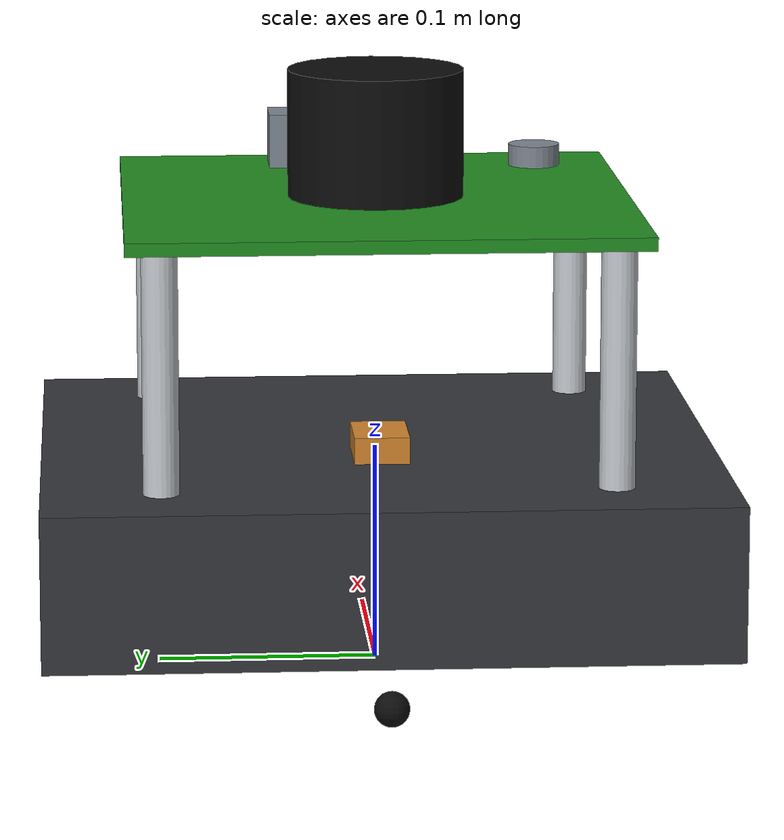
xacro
<?xml version="1.0"?>
<robot name="autonav_bot" xmlns:xacro="http://www.ros.org/wiki/xacro" xmlns:gz="http://gazebosim.org/schema">

  <xacro:arg name="lidar_mode" default="2d" />

  <!-- Include semua komponen -->
  <xacro:include filename="robot_core.xacro" />
  <xacro:include filename="lidar.xacro" />
  <xacro:include filename="lidar_3d.xacro" />
  <xacro:include filename="imu.xacro" />
  <xacro:include filename="depth_camera.xacro" />

  <!-- Bodi utama robot -->
  <xacro:turtlebot_core />

  <!-- Pilih mode LiDAR berdasarkan argumen -->
  <xacro:if value="${'$(arg lidar_mode)' == '2d'}">
    <xacro:turtlebot_lidar />
  </xacro:if>
  <xacro:if value="${'$(arg lidar_mode)' == '3d'}">
    <xacro:turtlebot_lidar_3d />
  </xacro:if>

  <!-- Sensor lainnya -->
  <xacro:turtlebot_imu />
  <xacro:turtlebot_depth_camera />

</robot>

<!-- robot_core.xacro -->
<robot xmlns:xacro="http://www.ros.org/wiki/xacro">

    <material name="dark_grey"><color rgba="0.20 0.21 0.23 1.0"/></material>
    <material name="mid_grey"><color rgba="0.50 0.53 0.57 1.0"/></material>
    <material name="light_grey"><color rgba="0.78 0.80 0.82 1.0"/></material>
    <material name="black"><color rgba="0.05 0.05 0.05 1.0"/></material>
    <material name="accent_orange"><color rgba="0.82 0.52 0.18 1.0"/></material>
    <material name="green_pcb"><color rgba="0.13 0.55 0.13 1.0"/></material>

    <xacro:macro name="turtlebot_core">
        <xacro:property name="PI" value="3.1415926535897931" />

        <xacro:property name="base_x" value="0.281" />
        <xacro:property name="base_y" value="0.306" />
        <xacro:property name="base_z" value="0.070" />
        <xacro:property name="base_mass" value="1.80" />

        <xacro:property name="wheel_radius" value="0.033" />
        <xacro:property name="wheel_width" value="0.018" />
        <xacro:property name="wheel_mass" value="0.05" />
        <xacro:property name="wheel_separation" value="0.287" />
        <xacro:property name="wheel_x_offset" value="0.0" />

        <xacro:property name="caster_radius" value="0.008" />
        <xacro:property name="caster_mass" value="0.01" />

        <xacro:property name="standoff_radius" value="0.008" />
        <xacro:property name="standoff_height" value="0.108" />

        <xacro:property name="plate_x" value="0.230" />
        <xacro:property name="plate_y" value="0.230" />
        <xacro:property name="plate_z" value="0.006" />
        <xacro:property name="plate_mass" value="0.15" />

        <link name="base_footprint" />

        <joint name="base_footprint_joint" type="fixed">
            <parent link="base_footprint" />
            <child link="base_link" />
            <origin xyz="0.0 0.0 ${wheel_radius}" rpy="0 0 0" />
        </joint>

        <link name="base_link">
            <visual>
                <origin xyz="0.0 0.0 ${base_z/2}" rpy="0 0 0" />
                <geometry>
                    <box size="${base_x} ${base_y} ${base_z}" />
                </geometry>
                <material name="dark_grey" />
            </visual>
            <collision>
                <origin xyz="0.0 0.0 ${base_z/2}" rpy="0 0 0" />
                <geometry>
                    <box size="${base_x} ${base_y} ${base_z}" />
                </geometry>
            </collision>
            <inertial>
                <origin xyz="0.0 0.0 ${base_z/2}" rpy="0 0 0" />
                <mass value="${base_mass}" />
                <inertia ixx="${(1.0/12.0)*base_mass*(base_y*base_y + base_z*base_z)}"
                                 ixy="0.0" ixz="0.0"
                                 iyy="${(1.0/12.0)*base_mass*(base_x*base_x + base_z*base_z)}"
                                 iyz="0.0"
                                 izz="${(1.0/12.0)*base_mass*(base_x*base_x + base_y*base_y)}" />
            </inertial>
        </link>

        <xacro:macro name="wheel" params="prefix y_reflect">
            <link name="wheel_${prefix}_link">
                <visual>
                    <origin xyz="0 0 0" rpy="${PI/2} 0 0" />
                    <geometry>
                        <cylinder radius="${wheel_radius}" length="${wheel_width}" />
                    </geometry>
                    <material name="black" />
                </visual>
                <collision>
                    <origin xyz="0 0 0" rpy="${PI/2} 0 0" />
                    <geometry>
                        <cylinder radius="${wheel_radius}" length="${wheel_width}" />
                    </geometry>
                </collision>
                <inertial>
                    <origin xyz="0 0 0" />
                    <mass value="${wheel_mass}" />
                    <inertia ixx="${(1.0/12.0)*wheel_mass*(3*wheel_radius*wheel_radius + wheel_width*wheel_width)}"
                                     ixy="0" ixz="0"
                                     iyy="${(1.0/12.0)*wheel_mass*(3*wheel_radius*wheel_radius + wheel_width*wheel_width)}"
                                     iyz="0"
                                     izz="${(1.0/2.0)*wheel_mass*wheel_radius*wheel_radius}" />
                </inertial>
            </link>

            <joint name="wheel_${prefix}_joint" type="continuous">
                <parent link="base_link" />
                <child link="wheel_${prefix}_link" />
                <origin xyz="${wheel_x_offset} ${y_reflect * wheel_separation/2} 0.0" rpy="0 0 0" />
                <axis xyz="0 1 0" />
                <dynamics damping="0.01" friction="0.1" />
            </joint>
        </xacro:macro>

        <xacro:wheel prefix="left" y_reflect="1" />
        <xacro:wheel prefix="right" y_reflect="-1" />

        <xacro:macro name="caster" params="prefix x_offset">
            <link name="caster_${prefix}_link">
                <visual>
                    <origin xyz="0 0 0" rpy="0 0 0" />
                    <geometry>
                        <sphere radius="${caster_radius}" />
                    </geometry>
                    <material name="black" />
                </visual>
                <collision>
                    <origin xyz="0 0 0" rpy="0 0 0" />
                    <geometry>
                        <sphere radius="${caster_radius}" />
                    </geometry>
                    <surface>
                        <friction>
                            <ode>
                                <mu>0.0</mu>
                                <mu2>0.0</mu2>
                            </ode>
                        </friction>
                    </surface>
                </collision>
                <inertial>
                    <origin xyz="0 0 0" />
                    <mass value="${caster_mass}" />
                    <inertia ixx="${(2.0/5.0)*caster_mass*caster_radius*caster_radius}"
                                     ixy="0" ixz="0"
                                     iyy="${(2.0/5.0)*caster_mass*caster_radius*caster_radius}"
                                     iyz="0"
                                     izz="${(2.0/5.0)*caster_mass*caster_radius*caster_radius}" />
                </inertial>
            </link>

            <joint name="caster_${prefix}_joint" type="fixed">
                <parent link="base_link" />
                <child link="caster_${prefix}_link" />
                <origin xyz="${x_offset} 0.0 ${-(wheel_radius - caster_radius)}" rpy="0 0 0" />
            </joint>
        </xacro:macro>

        <xacro:caster prefix="front" x_offset="${base_x/2 - 0.025}" />
        <xacro:caster prefix="back" x_offset="${-(base_x/2 - 0.025)}" />

        <xacro:macro name="standoff" params="prefix x_pos y_pos">
            <link name="standoff_${prefix}_link">
                <visual>
                    <origin xyz="0 0 ${standoff_height/2}" rpy="0 0 0" />
                    <geometry>
                        <cylinder radius="${standoff_radius}" length="${standoff_height}" />
                    </geometry>
                    <material name="light_grey" />
                </visual>
                <collision>
                    <origin xyz="0 0 ${standoff_height/2}" rpy="0 0 0" />
                    <geometry>
                        <cylinder radius="${standoff_radius}" length="${standoff_height}" />
                    </geometry>
                </collision>
                <inertial>
                    <origin xyz="0 0 ${standoff_height/2}" />
                    <mass value="0.02" />
                    <inertia ixx="0.00001" ixy="0" ixz="0" iyy="0.00001" iyz="0" izz="0.000001" />
                </inertial>
            </link>

            <joint name="standoff_${prefix}_joint" type="fixed">
                <parent link="base_link" />
                <child link="standoff_${prefix}_link" />
                <origin xyz="${x_pos} ${y_pos} ${base_z}" rpy="0 0 0" />
            </joint>
        </xacro:macro>

        <xacro:standoff prefix="front_left" x_pos="${plate_x/2 - 0.015}" y_pos="${plate_y/2 - 0.015}" />
        <xacro:standoff prefix="front_right" x_pos="${plate_x/2 - 0.015}" y_pos="${-(plate_y/2 - 0.015)}" />
        <xacro:standoff prefix="back_left" x_pos="${-(plate_x/2 - 0.015)}" y_pos="${plate_y/2 - 0.015}" />
        <xacro:standoff prefix="back_right" x_pos="${-(plate_x/2 - 0.015)}" y_pos="${-(plate_y/2 - 0.015)}" />

        <link name="top_plate_link">
            <visual>
                <origin xyz="0.0 0.0 0.0" rpy="0 0 0" />
                <geometry>
                    <box size="${plate_x} ${plate_y} ${plate_z}" />
                </geometry>
                <material name="green_pcb" />
            </visual>
            <collision>
                <origin xyz="0.0 0.0 0.0" rpy="0 0 0" />
                <geometry>
                    <box size="${plate_x} ${plate_y} ${plate_z}" />
                </geometry>
            </collision>
            <inertial>
                <origin xyz="0.0 0.0 0.0" rpy="0 0 0" />
                <mass value="${plate_mass}" />
                <inertia ixx="${(1.0/12.0)*plate_mass*(plate_y*plate_y + plate_z*plate_z)}"
                                 ixy="0.0" ixz="0.0"
                                 iyy="${(1.0/12.0)*plate_mass*(plate_x*plate_x + plate_z*plate_z)}"
                                 iyz="0.0"
                                 izz="${(1.0/12.0)*plate_mass*(plate_x*plate_x + plate_y*plate_y)}" />
            </inertial>
        </link>

        <joint name="top_plate_joint" type="fixed">
            <parent link="base_link" />
            <child link="top_plate_link" />
            <origin xyz="0.0 0.0 ${base_z + standoff_height + plate_z/2}" rpy="0 0 0" />
        </joint>

        <link name="gps_link">
            <visual>
                <origin xyz="0 0 0" rpy="0 0 0" />
                <geometry>
                    <cylinder radius="0.012" length="0.010" />
                </geometry>
                <material name="mid_grey" />
            </visual>
            <inertial>
                <origin xyz="0 0 0" />
                <mass value="0.005" />
                <inertia ixx="0.000001" ixy="0" ixz="0" iyy="0.000001" iyz="0" izz="0.000001" />
            </inertial>
        </link>

        <joint name="gps_joint" type="fixed">
            <parent link="top_plate_link" />
            <child link="gps_link" />
            <origin xyz="${plate_x/2 - 0.035} ${-(plate_y/2 - 0.035)} ${plate_z/2 + 0.005}" rpy="0 0 0" />
        </joint>

        <gazebo reference="base_link"><material>Gazebo/DarkGrey</material></gazebo>
        <gazebo reference="top_plate_link"><material>Gazebo/Green</material></gazebo>
        <gazebo reference="wheel_left_link"><material>Gazebo/FlatBlack</material></gazebo>
        <gazebo reference="wheel_right_link"><material>Gazebo/FlatBlack</material></gazebo>
        <gazebo reference="caster_front_link"><material>Gazebo/FlatBlack</material><mu1>0.0</mu1><mu2>0.0</mu2></gazebo>
        <gazebo reference="caster_back_link"><material>Gazebo/FlatBlack</material><mu1>0.0</mu1><mu2>0.0</mu2></gazebo>

        <gazebo>
            <plugin
                filename="gz-sim-diff-drive-system"
                name="gz::sim::systems::DiffDrive">
                <left_joint>wheel_left_joint</left_joint>
                <right_joint>wheel_right_joint</right_joint>
                <wheel_separation>${wheel_separation}</wheel_separation>
                <wheel_radius>${wheel_radius}</wheel_radius>
                <max_linear_acceleration>2.0</max_linear_acceleration>
                <min_linear_acceleration>-2.0</min_linear_acceleration>
                <max_angular_acceleration>4.0</max_angular_acceleration>
                <min_angular_acceleration>-4.0</min_angular_acceleration>
                <max_linear_velocity>1.0</max_linear_velocity>
                <min_linear_velocity>-1.0</min_linear_velocity>
                <max_angular_velocity>2.0</max_angular_velocity>
                <min_angular_velocity>-2.0</min_angular_velocity>
                <topic>/cmd_vel</topic>
                <odom_topic>/odom</odom_topic>
                <tf_topic>/tf</tf_topic>
                <frame_id>odom</frame_id>
                <child_frame_id>base_footprint</child_frame_id>
                <odom_publish_frequency>50</odom_publish_frequency>
            </plugin>
        </gazebo>

        <gazebo>
            <plugin
                filename="gz-sim-joint-state-publisher-system"
                name="gz::sim::systems::JointStatePublisher">
                <topic>/joint_states</topic>
                <joint_name>wheel_left_joint</joint_name>
                <joint_name>wheel_right_joint</joint_name>
                <update_rate>30</update_rate>
            </plugin>
        </gazebo>
    </xacro:macro>

</robot>

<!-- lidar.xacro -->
<robot xmlns:xacro="http://www.ros.org/wiki/xacro" xmlns:gz="http://gazebosim.org/schema">

    <xacro:macro name="turtlebot_lidar" params="parent_link:=base_link">
        <xacro:property name="PI" value="3.1415926535897931" />
        <xacro:property name="lidar_radius" value="0.040" />
        <xacro:property name="lidar_height" value="0.058" />
        <xacro:property name="lidar_mass" value="0.12" />

        <!-- Physical link silinder LiDAR -->
        <link name="lidar_link">
            <visual>
                <origin xyz="0 0 ${lidar_height/2}" rpy="0 0 0" />
                <geometry>
                    <cylinder radius="${lidar_radius}" length="${lidar_height}" />
                </geometry>
                <material name="black" />
            </visual>
            <collision>
                <origin xyz="0 0 ${lidar_height/2}" rpy="0 0 0" />
                <geometry>
                    <cylinder radius="${lidar_radius}" length="${lidar_height}" />
                </geometry>
            </collision>
            <inertial>
                <origin xyz="0 0 ${lidar_height/2}" />
                <mass value="${lidar_mass}" />
                <inertia ixx="${(1.0/12.0)*lidar_mass*(3*lidar_radius*lidar_radius + lidar_height*lidar_height)}"
                                 ixy="0" ixz="0"
                                 iyy="${(1.0/12.0)*lidar_mass*(3*lidar_radius*lidar_radius + lidar_height*lidar_height)}"
                                 iyz="0"
                                 izz="${(1.0/2.0)*lidar_mass*lidar_radius*lidar_radius}" />
            </inertial>
        </link>

        <!-- Joint menghubungkan lidar ke bodi robot -->
        <joint name="lidar_joint" type="fixed">
            <parent link="${parent_link}" />
            <child link="lidar_link" />
            <!-- z = tinggi chassis (0.070) + wheel_radius (0.033) + sedikit offset = ~0.184 -->
            <origin xyz="0.0 0.0 0.184" rpy="0 0 0" />
        </joint>

        <!-- Frame aliases agar RViz2 TF tree mengenali semua kemungkinan frame Gazebo -->
        <link name="autonav_bot/lidar_link/lidar" />
        <joint name="lidar_gz_frame_joint" type="fixed">
            <parent link="lidar_link" />
            <child link="autonav_bot/lidar_link/lidar" />
            <origin xyz="0 0 ${lidar_height/2}" rpy="0 0 0" />
        </joint>

        <link name="base_scan" />
        <joint name="scan_joint" type="fixed">
            <parent link="lidar_link" />
            <child link="base_scan" />
            <origin xyz="0 0 ${lidar_height/2}" rpy="0 0 0" />
        </joint>

        <!-- Instruksikan Gazebo Harmonic untuk TIDAK menggabungkan joint ini -->
        <gazebo reference="lidar_joint">
            <preserveFixedJoint>true</preserveFixedJoint>
        </gazebo>

        <!-- Warna link LiDAR di Gazebo -->
        <gazebo reference="lidar_link">
            <material>Gazebo/FlatBlack</material>
        </gazebo>

        <!-- Sensor gpu_lidar -->
        <gazebo reference="lidar_link">
            <sensor name="lidar" type="gpu_lidar">
                <pose>0 0 ${lidar_height/2} 0 0 0</pose>
                <always_on>true</always_on>
                <visualize>true</visualize>
                <update_rate>10</update_rate>
                <topic>/scan</topic>
                <gz:frame_id>lidar_link</gz:frame_id>
                <frame_id>lidar_link</frame_id>
                <lidar>
                    <scan>
                        <horizontal>
                            <samples>360</samples>
                            <resolution>1</resolution>
                            <min_angle>${-PI}</min_angle>
                            <max_angle>${PI}</max_angle>
                        </horizontal>
                    </scan>
                    <range>
                        <min>0.120</min>
                        <max>12.0</max>
                        <resolution>0.015</resolution>
                    </range>
                    <noise>
                        <type>gaussian</type>
                        <mean>0.0</mean>
                        <stddev>0.01</stddev>
                    </noise>
                </lidar>
            </sensor>
        </gazebo>
    </xacro:macro>

</robot>

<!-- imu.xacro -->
<robot xmlns:xacro="http://www.ros.org/wiki/xacro" xmlns:gz="http://gazebosim.org/schema">

    <xacro:macro name="turtlebot_imu" params="parent_link:=base_link">
        <link name="imu_link">
            <visual>
                <origin xyz="0 0 0" rpy="0 0 0" />
                <geometry>
                    <box size="0.035 0.025 0.012" />
                </geometry>
                <material name="accent_orange" />
            </visual>
            <inertial>
                <origin xyz="0 0 0" />
                <mass value="0.005" />
                <inertia ixx="0.000001" ixy="0" ixz="0" iyy="0.000001" iyz="0" izz="0.000001" />
            </inertial>
        </link>

        <joint name="imu_joint" type="fixed">
            <parent link="${parent_link}" />
            <child link="imu_link" />
            <origin xyz="-0.032 0.0 0.076" rpy="0 0 0" />
        </joint>

        <link name="autonav_bot/imu_link/imu_sensor" />
        <joint name="imu_gz_frame_joint" type="fixed">
            <parent link="imu_link" />
            <child link="autonav_bot/imu_link/imu_sensor" />
            <origin xyz="0 0 0" rpy="0 0 0" />
        </joint>

        <gazebo reference="imu_link">
            <material>Gazebo/Orange</material>
            <sensor name="imu_sensor" type="imu">
                <always_on>true</always_on>
                <update_rate>100</update_rate>
                <visualize>true</visualize>
                <topic>/imu/data</topic>
                <gz:frame_id>imu_link</gz:frame_id>
                <imu>
                    <angular_velocity>
                        <x>
                            <noise type="gaussian">
                                <mean>0.0</mean>
                                <stddev>2e-4</stddev>
                            </noise>
                        </x>
                        <y>
                            <noise type="gaussian">
                                <mean>0.0</mean>
                                <stddev>2e-4</stddev>
                            </noise>
                        </y>
                        <z>
                            <noise type="gaussian">
                                <mean>0.0</mean>
                                <stddev>2e-4</stddev>
                            </noise>
                        </z>
                    </angular_velocity>
                    <linear_acceleration>
                        <x>
                            <noise type="gaussian">
                                <mean>0.0</mean>
                                <stddev>1.7e-2</stddev>
                            </noise>
                        </x>
                        <y>
                            <noise type="gaussian">
                                <mean>0.0</mean>
                                <stddev>1.7e-2</stddev>
                            </noise>
                        </y>
                        <z>
                            <noise type="gaussian">
                                <mean>0.0</mean>
                                <stddev>1.7e-2</stddev>
                            </noise>
                        </z>
                    </linear_acceleration>
                </imu>
            </sensor>
        </gazebo>
    </xacro:macro>

</robot>

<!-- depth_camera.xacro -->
<robot xmlns:xacro="http://www.ros.org/wiki/xacro" xmlns:gz="http://gazebosim.org/schema">

    <xacro:macro name="turtlebot_depth_camera" params="parent_link:=base_link">
        <xacro:property name="camera_width" value="0.025" />
        <xacro:property name="camera_length" value="0.090" />
        <xacro:property name="camera_height" value="0.025" />

        <link name="camera_link">
            <visual>
                <origin xyz="0 0 0" rpy="0 0 0" />
                <geometry>
                    <box size="${camera_width} ${camera_length} ${camera_height}" />
                </geometry>
                <material name="mid_grey" />
            </visual>
            <collision>
                <origin xyz="0 0 0" rpy="0 0 0" />
                <geometry>
                    <box size="${camera_width} ${camera_length} ${camera_height}" />
                </geometry>
            </collision>
            <inertial>
                <origin xyz="0 0 0" rpy="0 0 0" />
                <mass value="0.02" />
                <inertia ixx="0.00001" ixy="0" ixz="0" iyy="0.00001" iyz="0" izz="0.00001" />
            </inertial>
        </link>

        <joint name="camera_joint" type="fixed">
            <parent link="top_plate_link" />
            <child link="camera_link" />
            <!-- Terpasang di bagian depan atas pelat hijau (x=0.090 m, z=setengah tebal pelat + setengah tinggi kamera) -->
            <origin xyz="0.090 0.0 ${0.006/2 + camera_height/2}" rpy="0 0 0" />
        </joint>

        <link name="autonav_bot/camera_link/depth_camera" />
        <joint name="camera_gz_frame_joint" type="fixed">
            <parent link="camera_link" />
            <child link="autonav_bot/camera_link/depth_camera" />
            <origin xyz="0 0 0" rpy="0 0 0" />
        </joint>

        <gazebo reference="camera_link">
            <material>Gazebo/Blue</material>
            <sensor name="depth_camera" type="rgbd_camera">
                <always_on>true</always_on>
                <visualize>true</visualize>
                <update_rate>30</update_rate>
                <topic>/camera</topic>
                <gz_frame_id>camera_link</gz_frame_id>
                <camera>
                    <horizontal_fov>1.089</horizontal_fov>
                    <image>
                        <width>640</width>
                        <height>480</height>
                        <format>R8G8B8</format>
                    </image>
                    <clip>
                        <near>0.05</near>
                        <far>8.0</far>
                    </clip>
                    <depth_camera>
                        <clip>
                            <near>0.1</near>
                            <far>8.0</far>
                        </clip>
                    </depth_camera>
                </camera>
            </sensor>
        </gazebo>
    </xacro:macro>

</robot>
